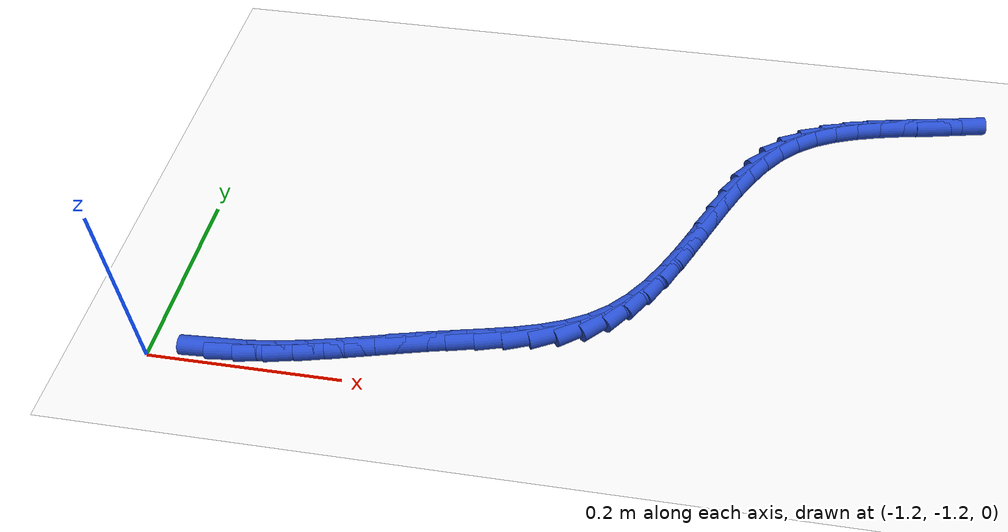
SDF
<sdf version="1.6">
 <world name="default">
  <model name="ground_plane">
   <static>1</static>
   <link name="link">
    <collision name="collision">
     <geometry><plane><normal>0 0 1</normal><size>100 100</size></plane></geometry>
     <surface><friction><ode><mu>100</mu><mu2>50</mu2></ode></friction></surface>
    </collision>
    <visual name="visual">
     <cast_shadows>0</cast_shadows>
     <geometry><plane><normal>0 0 1</normal><size>100 100</size></plane></geometry>
     <material>
      <script><uri>file://media/materials/scripts/gazebo.material</uri><name>Gazebo/WhiteGlow</name></script>
     </material>
    </visual>
   </link>
  </model>
  <model name="line">
   <link name="link_203">
    <pose>-1.1267041156202855 -1.1870098895184504 0.01 0 1.57 0.052734872597005066</pose>
    <collision name="collision">
     <geometry><cylinder><radius>0.01</radius><length>0.08</length></cylinder></geometry>
    </collision>
    <visual name="visual">
     <material>
      <script><name>Gazebo/Blue</name><uri>file://media/materials/scripts/gazebo.material</uri></script>
     </material>
     <geometry><cylinder><radius>0.01</radius><length>0.08</length></cylinder></geometry>
    </visual>
   </link>
   <link name="link_204">
    <pose>-1.0996624628921765 -1.185582528013334 0.01 0 1.57 0.12731280325010344</pose>
    <collision name="collision">
     <geometry><cylinder><radius>0.01</radius><length>0.08</length></cylinder></geometry>
    </collision>
    <visual name="visual">
     <material>
      <script><name>Gazebo/Blue</name><uri>file://media/materials/scripts/gazebo.material</uri></script>
     </material>
     <geometry><cylinder><radius>0.01</radius><length>0.08</length></cylinder></geometry>
    </visual>
   </link>
   <link name="link_205">
    <pose>-1.0717566331875241 -1.1820104382549494 0.01 0 1.57 0.18178097590502415</pose>
    <collision name="collision">
     <geometry><cylinder><radius>0.01</radius><length>0.08</length></cylinder></geometry>
    </collision>
    <visual name="visual">
     <material>
      <script><name>Gazebo/Blue</name><uri>file://media/materials/scripts/gazebo.material</uri></script>
     </material>
     <geometry><cylinder><radius>0.01</radius><length>0.08</length></cylinder></geometry>
    </visual>
   </link>
   <link name="link_206">
    <pose>-1.0431922795994566 -1.1767600222317258 0.01 0 1.57 0.21913090613941005</pose>
    <collision name="collision">
     <geometry><cylinder><radius>0.01</radius><length>0.08</length></cylinder></geometry>
    </collision>
    <visual name="visual">
     <material>
      <script><name>Gazebo/Blue</name><uri>file://media/materials/scripts/gazebo.material</uri></script>
     </material>
     <geometry><cylinder><radius>0.01</radius><length>0.08</length></cylinder></geometry>
    </visual>
   </link>
   <link name="link_207">
    <pose>-1.0141750552210997 -1.1702976819320932 0.01 0 1.57 0.24149427271533414</pose>
    <collision name="collision">
     <geometry><cylinder><radius>0.01</radius><length>0.08</length></cylinder></geometry>
    </collision>
    <visual name="visual">
     <material>
      <script><name>Gazebo/Blue</name><uri>file://media/materials/scripts/gazebo.material</uri></script>
     </material>
     <geometry><cylinder><radius>0.01</radius><length>0.08</length></cylinder></geometry>
    </visual>
   </link>
   <link name="link_208">
    <pose>-0.9849106131455825 -1.1630898193444814 0.01 0 1.57 0.2501259167816676</pose>
    <collision name="collision">
     <geometry><cylinder><radius>0.01</radius><length>0.08</length></cylinder></geometry>
    </collision>
    <visual name="visual">
     <material>
      <script><name>Gazebo/Blue</name><uri>file://media/materials/scripts/gazebo.material</uri></script>
     </material>
     <geometry><cylinder><radius>0.01</radius><length>0.08</length></cylinder></geometry>
    </visual>
   </link>
   <link name="link_209">
    <pose>-0.9556046064660305 -1.1556028364573196 0.01 0 1.57 0.24543791722135805</pose>
    <collision name="collision">
     <geometry><cylinder><radius>0.01</radius><length>0.08</length></cylinder></geometry>
    </collision>
    <visual name="visual">
     <material>
      <script><name>Gazebo/Blue</name><uri>file://media/materials/scripts/gazebo.material</uri></script>
     </material>
     <geometry><cylinder><radius>0.01</radius><length>0.08</length></cylinder></geometry>
    </visual>
   </link>
   <link name="link_210">
    <pose>-0.9264626882755724 -1.148303135259039 0.01 0 1.57 0.22835557318330432</pose>
    <collision name="collision">
     <geometry><cylinder><radius>0.01</radius><length>0.08</length></cylinder></geometry>
    </collision>
    <visual name="visual">
     <material>
      <script><name>Gazebo/Blue</name><uri>file://media/materials/scripts/gazebo.material</uri></script>
     </material>
     <geometry><cylinder><radius>0.01</radius><length>0.08</length></cylinder></geometry>
    </visual>
   </link>
   <link name="link_211">
    <pose>-0.8976949803188793 -1.1416172481042832 0.01 0 1.57 0.2194057697703386</pose>
    <collision name="collision">
     <geometry><cylinder><radius>0.01</radius><length>0.08</length></cylinder></geometry>
    </collision>
    <visual name="visual">
     <material>
      <script><name>Gazebo/Blue</name><uri>file://media/materials/scripts/gazebo.material</uri></script>
     </material>
     <geometry><cylinder><radius>0.01</radius><length>0.08</length></cylinder></geometry>
    </visual>
   </link>
   <link name="link_212">
    <pose>-0.869581502882205 -1.1353480674808585 0.01 0 1.57 0.23673605680574347</pose>
    <collision name="collision">
     <geometry><cylinder><radius>0.01</radius><length>0.08</length></cylinder></geometry>
    </collision>
    <visual name="visual">
     <material>
      <script><name>Gazebo/Blue</name><uri>file://media/materials/scripts/gazebo.material</uri></script>
     </material>
     <geometry><cylinder><radius>0.01</radius><length>0.08</length></cylinder></geometry>
    </visual>
   </link>
   <link name="link_213">
    <pose>-0.8424576796507374 -1.128804172725592 0.01 0 1.57 0.28377283577005047</pose>
    <collision name="collision">
     <geometry><cylinder><radius>0.01</radius><length>0.08</length></cylinder></geometry>
    </collision>
    <visual name="visual">
     <material>
      <script><name>Gazebo/Blue</name><uri>file://media/materials/scripts/gazebo.material</uri></script>
     </material>
     <geometry><cylinder><radius>0.01</radius><length>0.08</length></cylinder></geometry>
    </visual>
   </link>
   <link name="link_214">
    <pose>-0.8166604547596517 -1.1212805776100783 0.01 0 1.57 0.3645034531336665</pose>
    <collision name="collision">
     <geometry><cylinder><radius>0.01</radius><length>0.08</length></cylinder></geometry>
    </collision>
    <visual name="visual">
     <material>
      <script><name>Gazebo/Blue</name><uri>file://media/materials/scripts/gazebo.material</uri></script>
     </material>
     <geometry><cylinder><radius>0.01</radius><length>0.08</length></cylinder></geometry>
    </visual>
   </link>
   <link name="link_215">
    <pose>-0.7925267723441206 -1.1120722959059117 0.01 0 1.57 0.4826684183014774</pose>
    <collision name="collision">
     <geometry><cylinder><radius>0.01</radius><length>0.08</length></cylinder></geometry>
    </collision>
    <visual name="visual">
     <material>
      <script><name>Gazebo/Blue</name><uri>file://media/materials/scripts/gazebo.material</uri></script>
     </material>
     <geometry><cylinder><radius>0.01</radius><length>0.08</length></cylinder></geometry>
    </visual>
   </link>
   <link name="link_216">
    <pose>-0.7703935765393178 -1.100474341384687 0.01 0 1.57 0.6379627602804148</pose>
    <collision name="collision">
     <geometry><cylinder><radius>0.01</radius><length>0.08</length></cylinder></geometry>
    </collision>
    <visual name="visual">
     <material>
      <script><name>Gazebo/Blue</name><uri>file://media/materials/scripts/gazebo.material</uri></script>
     </material>
     <geometry><cylinder><radius>0.01</radius><length>0.08</length></cylinder></geometry>
    </visual>
   </link>
   <link name="link_217">
    <pose>-0.7505910851435074 -1.0857931299306955 0.01 0 1.57 0.7998018519163401</pose>
    <collision name="collision">
     <geometry><cylinder><radius>0.01</radius><length>0.08</length></cylinder></geometry>
    </collision>
    <visual name="visual">
     <material>
      <script><name>Gazebo/Blue</name><uri>file://media/materials/scripts/gazebo.material</uri></script>
     </material>
     <geometry><cylinder><radius>0.01</radius><length>0.08</length></cylinder></geometry>
    </visual>
   </link>
   <link name="link_218">
    <pose>-0.7331502076702935 -1.0678424482063908 0.01 0 1.57 0.929465365376673</pose>
    <collision name="collision">
     <geometry><cylinder><radius>0.01</radius><length>0.08</length></cylinder></geometry>
    </collision>
    <visual name="visual">
     <material>
      <script><name>Gazebo/Blue</name><uri>file://media/materials/scripts/gazebo.material</uri></script>
     </material>
     <geometry><cylinder><radius>0.01</radius><length>0.08</length></cylinder></geometry>
    </visual>
   </link>
   <link name="link_219">
    <pose>-0.7176896256149315 -1.047134868912479 0.01 0 1.57 1.025541020035987</pose>
    <collision name="collision">
     <geometry><cylinder><radius>0.01</radius><length>0.08</length></cylinder></geometry>
    </collision>
    <visual name="visual">
     <material>
      <script><name>Gazebo/Blue</name><uri>file://media/materials/scripts/gazebo.material</uri></script>
     </material>
     <geometry><cylinder><radius>0.01</radius><length>0.08</length></cylinder></geometry>
    </visual>
   </link>
   <link name="link_220">
    <pose>-0.7037979822767988 -1.0242338838307508 0.01 0 1.57 1.091983434675647</pose>
    <collision name="collision">
     <geometry><cylinder><radius>0.01</radius><length>0.08</length></cylinder></geometry>
    </collision>
    <visual name="visual">
     <material>
      <script><name>Gazebo/Blue</name><uri>file://media/materials/scripts/gazebo.material</uri></script>
     </material>
     <geometry><cylinder><radius>0.01</radius><length>0.08</length></cylinder></geometry>
    </visual>
   </link>
   <link name="link_221">
    <pose>-0.6910639209552749 -0.9997029847429981 0.01 0 1.57 1.1328092076902205</pose>
    <collision name="collision">
     <geometry><cylinder><radius>0.01</radius><length>0.08</length></cylinder></geometry>
    </collision>
    <visual name="visual">
     <material>
      <script><name>Gazebo/Blue</name><uri>file://media/materials/scripts/gazebo.material</uri></script>
     </material>
     <geometry><cylinder><radius>0.01</radius><length>0.08</length></cylinder></geometry>
    </visual>
   </link>
   <link name="link_222">
    <pose>-0.6790760849497371 -0.9741056634310117 0.01 0 1.57 1.150882209807736</pose>
    <collision name="collision">
     <geometry><cylinder><radius>0.01</radius><length>0.08</length></cylinder></geometry>
    </collision>
    <visual name="visual">
     <material>
      <script><name>Gazebo/Blue</name><uri>file://media/materials/scripts/gazebo.material</uri></script>
     </material>
     <geometry><cylinder><radius>0.01</radius><length>0.08</length></cylinder></geometry>
    </visual>
   </link>
   <link name="link_223">
    <pose>-0.6674231175595647 -0.9480054116765833 0.01 0 1.57 1.1475721724118768</pose>
    <collision name="collision">
     <geometry><cylinder><radius>0.01</radius><length>0.08</length></cylinder></geometry>
    </collision>
    <visual name="visual">
     <material>
      <script><name>Gazebo/Blue</name><uri>file://media/materials/scripts/gazebo.material</uri></script>
     </material>
     <geometry><cylinder><radius>0.01</radius><length>0.08</length></cylinder></geometry>
    </visual>
   </link>
   <link name="link_224">
    <pose>-0.6556936620841353 -0.9219657212615033 0.01 0 1.57 1.1227074772252605</pose>
    <collision name="collision">
     <geometry><cylinder><radius>0.01</radius><length>0.08</length></cylinder></geometry>
    </collision>
    <visual name="visual">
     <material>
      <script><name>Gazebo/Blue</name><uri>file://media/materials/scripts/gazebo.material</uri></script>
     </material>
     <geometry><cylinder><radius>0.01</radius><length>0.08</length></cylinder></geometry>
    </visual>
   </link>
   <link name="link_225">
    <pose>-0.6434763618228282 -0.8965500839675645 0.01 0 1.57 1.074598522413645</pose>
    <collision name="collision">
     <geometry><cylinder><radius>0.01</radius><length>0.08</length></cylinder></geometry>
    </collision>
    <visual name="visual">
     <material>
      <script><name>Gazebo/Blue</name><uri>file://media/materials/scripts/gazebo.material</uri></script>
     </material>
     <geometry><cylinder><radius>0.01</radius><length>0.08</length></cylinder></geometry>
    </visual>
   </link>
   <link name="link_226">
    <pose>-0.6303598600750209 -0.8723219915765571 0.01 0 1.57 1.0001667129138707</pose>
    <collision name="collision">
     <geometry><cylinder><radius>0.01</radius><length>0.08</length></cylinder></geometry>
    </collision>
    <visual name="visual">
     <material>
      <script><name>Gazebo/Blue</name><uri>file://media/materials/scripts/gazebo.material</uri></script>
     </material>
     <geometry><cylinder><radius>0.01</radius><length>0.08</length></cylinder></geometry>
    </visual>
   </link>
   <link name="link_227">
    <pose>-0.615932800140092 -0.849844935870272 0.01 0 1.57 0.8954824688894122</pose>
    <collision name="collision">
     <geometry><cylinder><radius>0.01</radius><length>0.08</length></cylinder></geometry>
    </collision>
    <visual name="visual">
     <material>
      <script><name>Gazebo/Blue</name><uri>file://media/materials/scripts/gazebo.material</uri></script>
     </material>
     <geometry><cylinder><radius>0.01</radius><length>0.08</length></cylinder></geometry>
    </visual>
   </link>
   <link name="link_228">
    <pose>-0.5997838253174208 -0.8296824086305019 0.01 0 1.57 0.7573529322538852</pose>
    <collision name="collision">
     <geometry><cylinder><radius>0.01</radius><length>0.08</length></cylinder></geometry>
    </collision>
    <visual name="visual">
     <material>
      <script><name>Gazebo/Blue</name><uri>file://media/materials/scripts/gazebo.material</uri></script>
     </material>
     <geometry><cylinder><radius>0.01</radius><length>0.08</length></cylinder></geometry>
    </visual>
   </link>
   <link name="link_229">
    <pose>-0.5815015789063841 -0.8123979016390367 0.01 0 1.57 0.5958211062067666</pose>
    <collision name="collision">
     <geometry><cylinder><radius>0.01</radius><length>0.08</length></cylinder></geometry>
    </collision>
    <visual name="visual">
     <material>
      <script><name>Gazebo/Blue</name><uri>file://media/materials/scripts/gazebo.material</uri></script>
     </material>
     <geometry><cylinder><radius>0.01</radius><length>0.08</length></cylinder></geometry>
    </visual>
   </link>
   <link name="link_230">
    <pose>-0.5608092544476814 -0.7983681028733839 0.01 0 1.57 0.45418823040649786</pose>
    <collision name="collision">
     <geometry><cylinder><radius>0.01</radius><length>0.08</length></cylinder></geometry>
    </collision>
    <visual name="visual">
     <material>
      <script><name>Gazebo/Blue</name><uri>file://media/materials/scripts/gazebo.material</uri></script>
     </material>
     <geometry><cylinder><radius>0.01</radius><length>0.08</length></cylinder></geometry>
    </visual>
   </link>
   <link name="link_231">
    <pose>-0.537971482335909 -0.7872179925244501 0.01 0 1.57 0.345009119790291</pose>
    <collision name="collision">
     <geometry><cylinder><radius>0.01</radius><length>0.08</length></cylinder></geometry>
    </collision>
    <visual name="visual">
     <material>
      <script><name>Gazebo/Blue</name><uri>file://media/materials/scripts/gazebo.material</uri></script>
     </material>
     <geometry><cylinder><radius>0.01</radius><length>0.08</length></cylinder></geometry>
    </visual>
   </link>
   <link name="link_232">
    <pose>-0.5133890660092274 -0.7783834939495857 0.01 0 1.57 0.2666887662088081</pose>
    <collision name="collision">
     <geometry><cylinder><radius>0.01</radius><length>0.08</length></cylinder></geometry>
    </collision>
    <visual name="visual">
     <material>
      <script><name>Gazebo/Blue</name><uri>file://media/materials/scripts/gazebo.material</uri></script>
     </material>
     <geometry><cylinder><radius>0.01</radius><length>0.08</length></cylinder></geometry>
    </visual>
   </link>
   <link name="link_233">
    <pose>-0.4874628089068745 -0.7713005305046405 0.01 0 1.57 0.21599148778574012</pose>
    <collision name="collision">
     <geometry><cylinder><radius>0.01</radius><length>0.08</length></cylinder></geometry>
    </collision>
    <visual name="visual">
     <material>
      <script><name>Gazebo/Blue</name><uri>file://media/materials/scripts/gazebo.material</uri></script>
     </material>
     <geometry><cylinder><radius>0.01</radius><length>0.08</length></cylinder></geometry>
    </visual>
   </link>
   <link name="link_234">
    <pose>-0.46059351446809077 -0.7654050255454652 0.01 0 1.57 0.1900120469750527</pose>
    <collision name="collision">
     <geometry><cylinder><radius>0.01</radius><length>0.08</length></cylinder></geometry>
    </collision>
    <visual name="visual">
     <material>
      <script><name>Gazebo/Blue</name><uri>file://media/materials/scripts/gazebo.material</uri></script>
     </material>
     <geometry><cylinder><radius>0.01</radius><length>0.08</length></cylinder></geometry>
    </visual>
   </link>
   <link name="link_235">
    <pose>-0.4331819861321144 -0.7601329024279101 0.01 0 1.57 0.18698263322997385</pose>
    <collision name="collision">
     <geometry><cylinder><radius>0.01</radius><length>0.08</length></cylinder></geometry>
    </collision>
    <visual name="visual">
     <material>
      <script><name>Gazebo/Blue</name><uri>file://media/materials/scripts/gazebo.material</uri></script>
     </material>
     <geometry><cylinder><radius>0.01</radius><length>0.08</length></cylinder></geometry>
    </visual>
   </link>
   <link name="link_236">
    <pose>-0.40562902733818357 -0.7549200845078251 0.01 0 1.57 0.20649863365408996</pose>
    <collision name="collision">
     <geometry><cylinder><radius>0.01</radius><length>0.08</length></cylinder></geometry>
    </collision>
    <visual name="visual">
     <material>
      <script><name>Gazebo/Blue</name><uri>file://media/materials/scripts/gazebo.material</uri></script>
     </material>
     <geometry><cylinder><radius>0.01</radius><length>0.08</length></cylinder></geometry>
    </visual>
   </link>
  </model>
 </world>
</sdf>
